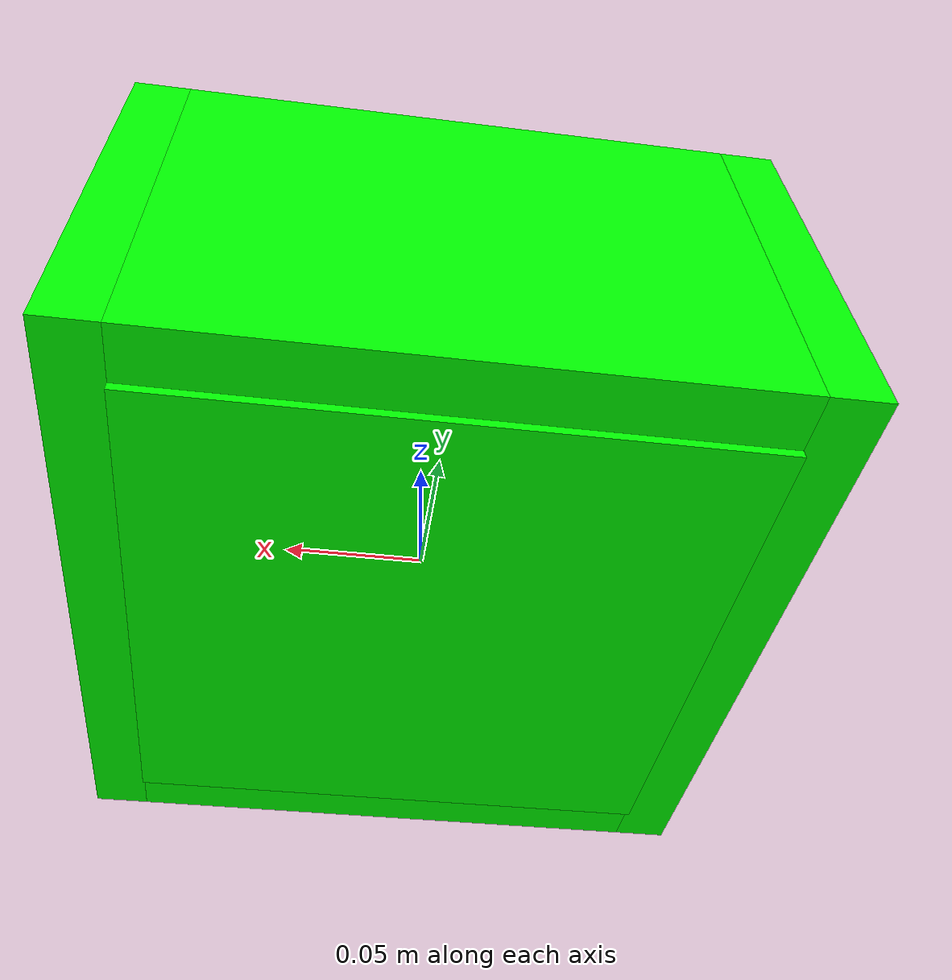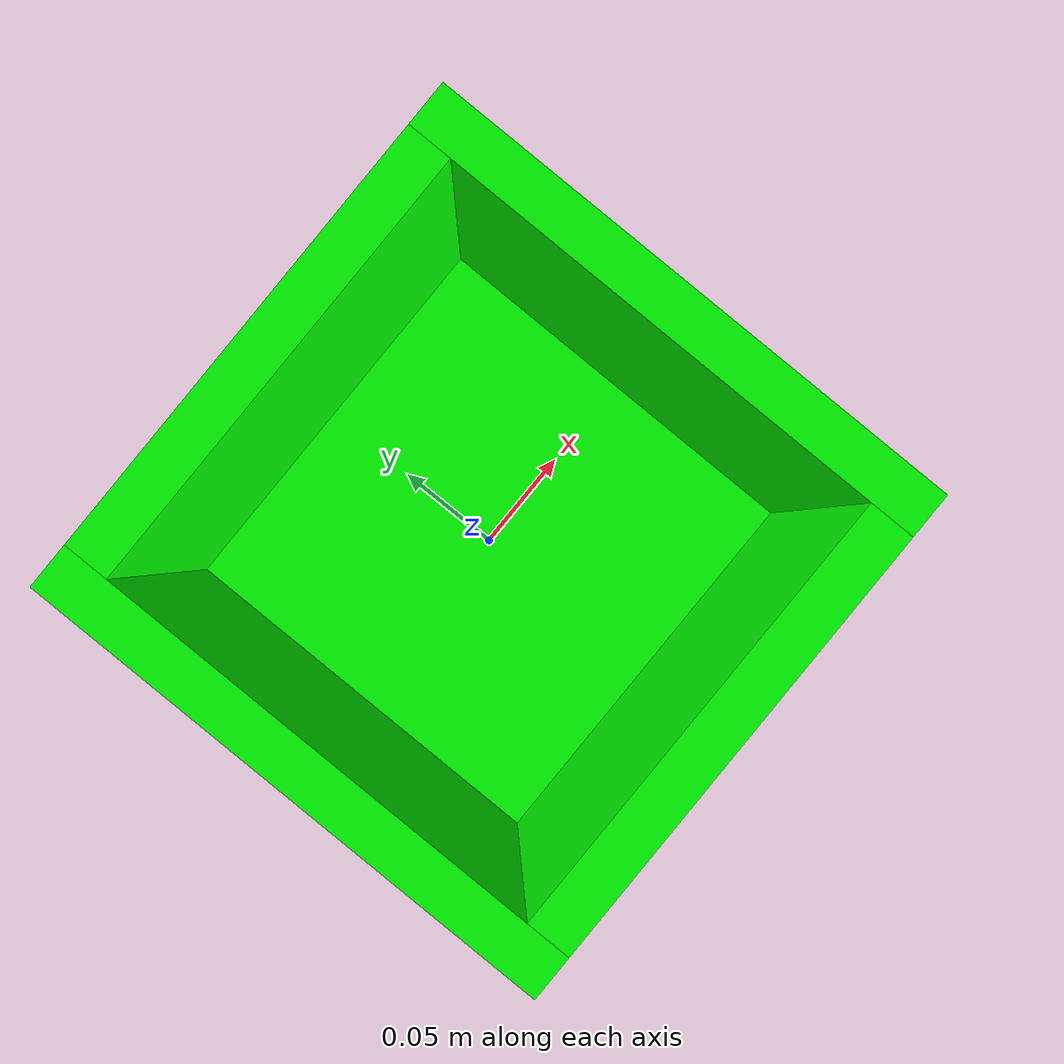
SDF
<?xml version='1.0'?>
<sdf version='1.7'>
  <model name='box_green'>
    <link name='link_0'>
      <inertial>
        <mass>0.94</mass>
        <inertia>
          <ixx>0.00316467</ixx>
          <ixy>0</ixy>
          <ixz>0</ixz>
          <iyy>0.00316467</iyy>
          <iyz>0</iyz>
          <izz>0.00626667</izz>
        </inertia>
        <pose>0 0 0 0 -0 0</pose>
      </inertial>
      <pose>0 0 -0.03 0 -0 0</pose>
      <gravity>1</gravity>
      <self_collide>0</self_collide>
      <kinematic>0</kinematic>
      <enable_wind>0</enable_wind>
      <visual name='visual'>
        <pose>0 0 0 0 -0 0</pose>
        <geometry>
          <box>
            <size>0.2 0.2 0.02</size>
          </box>
        </geometry>
        <material>
          <lighting>1</lighting>
          <script>
            <uri>file://media/materials/scripts/gazebo.material</uri>
            <name>Gazebo/Grey</name>
          </script>
          <shader type='pixel'>
            <normal_map>__default__</normal_map>
          </shader>
          <ambient>0 1 0 1</ambient>
          <diffuse>0.7 0.7 0.7 1</diffuse>
          <specular>0.01 0.01 0.01 1</specular>
          <emissive>0 0 0 1</emissive>
        </material>
        <transparency>0</transparency>
        <cast_shadows>1</cast_shadows>
      </visual>
      <collision name='collision'>
        <laser_retro>0</laser_retro>
        <max_contacts>10</max_contacts>
        <pose>0 0 0 0 -0 0</pose>
        <geometry>
          <box>
            <size>0.2 0.2 0.02</size>
          </box>
        </geometry>
        <surface>
          <friction>
            <ode>
              <mu>1</mu>
              <mu2>1</mu2>
              <fdir1>0 0 0</fdir1>
              <slip1>0</slip1>
              <slip2>0</slip2>
            </ode>
            <torsional>
              <coefficient>1</coefficient>
              <patch_radius>0</patch_radius>
              <surface_radius>0</surface_radius>
              <use_patch_radius>1</use_patch_radius>
              <ode>
                <slip>0</slip>
              </ode>
            </torsional>
          </friction>
          <bounce>
            <restitution_coefficient>0</restitution_coefficient>
            <threshold>1e+06</threshold>
          </bounce>
          <contact>
            <collide_without_contact>0</collide_without_contact>
            <collide_without_contact_bitmask>1</collide_without_contact_bitmask>
            <collide_bitmask>1</collide_bitmask>
            <ode>
              <soft_cfm>0</soft_cfm>
              <soft_erp>0.2</soft_erp>
              <kp>1e+13</kp>
              <kd>1</kd>
              <max_vel>0.01</max_vel>
              <min_depth>0</min_depth>
            </ode>
            <bullet>
              <split_impulse>1</split_impulse>
              <split_impulse_penetration_threshold>-0.01</split_impulse_penetration_threshold>
              <soft_cfm>0</soft_cfm>
              <soft_erp>0.2</soft_erp>
              <kp>1e+13</kp>
              <kd>1</kd>
            </bullet>
          </contact>
        </surface>
      </collision>
    </link>
    <link name='link_1'>
      <inertial>
        <mass>2.256</mass>
        <inertia>
          <ixx>0.0409088</ixx>
          <ixy>0</ixy>
          <ixz>0</ixz>
          <iyy>0.0301552</iyy>
          <iyz>0</iyz>
          <izz>0.010904</izz>
        </inertia>
        <pose>0 0 0 0 -0 0</pose>
      </inertial>
      <pose>-0.11 0 0.038 0 -0 0</pose>
      <gravity>1</gravity>
      <self_collide>0</self_collide>
      <kinematic>0</kinematic>
      <enable_wind>0</enable_wind>
      <visual name='visual'>
        <pose>0 0 0 0 -0 0</pose>
        <geometry>
          <box>
            <size>0.02 0.24 0.15</size>
          </box>
        </geometry>
        <material>
          <lighting>1</lighting>
          <script>
            <uri>file://media/materials/scripts/gazebo.material</uri>
            <name>Gazebo/Grey</name>
          </script>
          <shader type='pixel'>
            <normal_map>__default__</normal_map>
          </shader>
          <ambient>0 1 0 1</ambient>
          <diffuse>0.7 0.7 0.7 1</diffuse>
          <specular>0.01 0.01 0.01 1</specular>
          <emissive>0 0 0 1</emissive>
        </material>
        <transparency>0</transparency>
        <cast_shadows>1</cast_shadows>
      </visual>
      <collision name='collision'>
        <laser_retro>0</laser_retro>
        <max_contacts>10</max_contacts>
        <pose>0 0 0 0 -0 0</pose>
        <geometry>
          <box>
            <size>0.02 0.24 0.15</size>
          </box>
        </geometry>
        <surface>
          <friction>
            <ode>
              <mu>1</mu>
              <mu2>1</mu2>
              <fdir1>0 0 0</fdir1>
              <slip1>0</slip1>
              <slip2>0</slip2>
            </ode>
            <torsional>
              <coefficient>1</coefficient>
              <patch_radius>0</patch_radius>
              <surface_radius>0</surface_radius>
              <use_patch_radius>1</use_patch_radius>
              <ode>
                <slip>0</slip>
              </ode>
            </torsional>
          </friction>
          <bounce>
            <restitution_coefficient>0</restitution_coefficient>
            <threshold>1e+06</threshold>
          </bounce>
          <contact>
            <collide_without_contact>0</collide_without_contact>
            <collide_without_contact_bitmask>1</collide_without_contact_bitmask>
            <collide_bitmask>1</collide_bitmask>
            <ode>
              <soft_cfm>0</soft_cfm>
              <soft_erp>0.2</soft_erp>
              <kp>1e+13</kp>
              <kd>1</kd>
              <max_vel>0.01</max_vel>
              <min_depth>0</min_depth>
            </ode>
            <bullet>
              <split_impulse>1</split_impulse>
              <split_impulse_penetration_threshold>-0.01</split_impulse_penetration_threshold>
              <soft_cfm>0</soft_cfm>
              <soft_erp>0.2</soft_erp>
              <kp>1e+13</kp>
              <kd>1</kd>
            </bullet>
          </contact>
        </surface>
      </collision>
    </link>
    <link name='link_1_clone'>
      <inertial>
        <mass>2.256</mass>
        <inertia>
          <ixx>0.0409088</ixx>
          <ixy>0</ixy>
          <ixz>0</ixz>
          <iyy>0.0301552</iyy>
          <iyz>0</iyz>
          <izz>0.010904</izz>
        </inertia>
        <pose>0 0 0 0 -0 0</pose>
      </inertial>
      <pose>0.11 0 0.038 0 -0 0</pose>
      <gravity>1</gravity>
      <self_collide>0</self_collide>
      <kinematic>0</kinematic>
      <enable_wind>0</enable_wind>
      <visual name='visual'>
        <pose>0 0 0 0 -0 0</pose>
        <geometry>
          <box>
            <size>0.02 0.24 0.15</size>
          </box>
        </geometry>
        <material>
          <lighting>1</lighting>
          <script>
            <uri>file://media/materials/scripts/gazebo.material</uri>
            <name>Gazebo/Grey</name>
          </script>
          <shader type='pixel'>
            <normal_map>__default__</normal_map>
          </shader>
          <ambient>0 1 0 1</ambient>
          <diffuse>0.7 0.7 0.7 1</diffuse>
          <specular>0.01 0.01 0.01 1</specular>
          <emissive>0 0 0 1</emissive>
        </material>
        <transparency>0</transparency>
        <cast_shadows>1</cast_shadows>
      </visual>
      <collision name='collision'>
        <laser_retro>0</laser_retro>
        <max_contacts>10</max_contacts>
        <pose>0 0 0 0 -0 0</pose>
        <geometry>
          <box>
            <size>0.02 0.24 0.15</size>
          </box>
        </geometry>
        <surface>
          <friction>
            <ode>
              <mu>1</mu>
              <mu2>1</mu2>
              <fdir1>0 0 0</fdir1>
              <slip1>0</slip1>
              <slip2>0</slip2>
            </ode>
            <torsional>
              <coefficient>1</coefficient>
              <patch_radius>0</patch_radius>
              <surface_radius>0</surface_radius>
              <use_patch_radius>1</use_patch_radius>
              <ode>
                <slip>0</slip>
              </ode>
            </torsional>
          </friction>
          <bounce>
            <restitution_coefficient>0</restitution_coefficient>
            <threshold>1e+06</threshold>
          </bounce>
          <contact>
            <collide_without_contact>0</collide_without_contact>
            <collide_without_contact_bitmask>1</collide_without_contact_bitmask>
            <collide_bitmask>1</collide_bitmask>
            <ode>
              <soft_cfm>0</soft_cfm>
              <soft_erp>0.2</soft_erp>
              <kp>1e+13</kp>
              <kd>1</kd>
              <max_vel>0.01</max_vel>
              <min_depth>0</min_depth>
            </ode>
            <bullet>
              <split_impulse>1</split_impulse>
              <split_impulse_penetration_threshold>-0.01</split_impulse_penetration_threshold>
              <soft_cfm>0</soft_cfm>
              <soft_erp>0.2</soft_erp>
              <kp>1e+13</kp>
              <kd>1</kd>
            </bullet>
          </contact>
        </surface>
      </collision>
    </link>
    <link name='link_1_clone_0'>
      <inertial>
        <mass>1.88</mass>
        <inertia>
          <ixx>0.0251293</ixx>
          <ixy>0</ixy>
          <ixz>0</ixz>
          <iyy>0.0313333</iyy>
          <iyz>0</iyz>
          <izz>0.00632933</izz>
        </inertia>
        <pose>0 0 0 0 -0 0</pose>
      </inertial>
      <pose>0 0.11 0.038 0 -0 0</pose>
      <gravity>1</gravity>
      <self_collide>0</self_collide>
      <kinematic>0</kinematic>
      <enable_wind>0</enable_wind>
      <visual name='visual'>
        <pose>0 0 0 0 -0 0</pose>
        <geometry>
          <box>
            <size>0.2 0.02 0.15</size>
          </box>
        </geometry>
        <material>
          <lighting>1</lighting>
          <script>
            <uri>file://media/materials/scripts/gazebo.material</uri>
            <name>Gazebo/Grey</name>
          </script>
          <shader type='pixel'>
            <normal_map>__default__</normal_map>
          </shader>
          <ambient>0 1 0 1</ambient>
          <diffuse>0.7 0.7 0.7 1</diffuse>
          <specular>0.01 0.01 0.01 1</specular>
          <emissive>0 0 0 1</emissive>
        </material>
        <transparency>0</transparency>
        <cast_shadows>1</cast_shadows>
      </visual>
      <collision name='collision'>
        <laser_retro>0</laser_retro>
        <max_contacts>10</max_contacts>
        <pose>0 0 0 0 -0 0</pose>
        <geometry>
          <box>
            <size>0.2 0.02 0.15</size>
          </box>
        </geometry>
        <surface>
          <friction>
            <ode>
              <mu>1</mu>
              <mu2>1</mu2>
              <fdir1>0 0 0</fdir1>
              <slip1>0</slip1>
              <slip2>0</slip2>
            </ode>
            <torsional>
              <coefficient>1</coefficient>
              <patch_radius>0</patch_radius>
              <surface_radius>0</surface_radius>
              <use_patch_radius>1</use_patch_radius>
              <ode>
                <slip>0</slip>
              </ode>
            </torsional>
          </friction>
          <bounce>
            <restitution_coefficient>0</restitution_coefficient>
            <threshold>1e+06</threshold>
          </bounce>
          <contact>
            <collide_without_contact>0</collide_without_contact>
            <collide_without_contact_bitmask>1</collide_without_contact_bitmask>
            <collide_bitmask>1</collide_bitmask>
            <ode>
              <soft_cfm>0</soft_cfm>
              <soft_erp>0.2</soft_erp>
              <kp>1e+13</kp>
              <kd>1</kd>
              <max_vel>0.01</max_vel>
              <min_depth>0</min_depth>
            </ode>
            <bullet>
              <split_impulse>1</split_impulse>
              <split_impulse_penetration_threshold>-0.01</split_impulse_penetration_threshold>
              <soft_cfm>0</soft_cfm>
              <soft_erp>0.2</soft_erp>
              <kp>1e+13</kp>
              <kd>1</kd>
            </bullet>
          </contact>
        </surface>
      </collision>
    </link>
    <link name='link_1_clone_0_clone'>
      <inertial>
        <mass>1.88</mass>
        <inertia>
          <ixx>0.0251293</ixx>
          <ixy>0</ixy>
          <ixz>0</ixz>
          <iyy>0.0313333</iyy>
          <iyz>0</iyz>
          <izz>0.00632933</izz>
        </inertia>
        <pose>0 0 0 0 -0 0</pose>
      </inertial>
      <pose>0 -0.11 0.038 0 -0 0</pose>
      <gravity>1</gravity>
      <self_collide>0</self_collide>
      <kinematic>0</kinematic>
      <enable_wind>0</enable_wind>
      <visual name='visual'>
        <pose>0 0 0 0 -0 0</pose>
        <geometry>
          <box>
            <size>0.2 0.02 0.15</size>
          </box>
        </geometry>
        <material>
          <lighting>1</lighting>
          <script>
            <uri>file://media/materials/scripts/gazebo.material</uri>
            <name>Gazebo/Grey</name>
          </script>
          <shader type='pixel'>
            <normal_map>__default__</normal_map>
          </shader>
          <ambient>0 1 0 1</ambient>
          <diffuse>0.7 0.7 0.7 1</diffuse>
          <specular>0.01 0.01 0.01 1</specular>
          <emissive>0 0 0 1</emissive>
        </material>
        <transparency>0</transparency>
        <cast_shadows>1</cast_shadows>
      </visual>
      <collision name='collision'>
        <laser_retro>0</laser_retro>
        <max_contacts>10</max_contacts>
        <pose>0 0 0 0 -0 0</pose>
        <geometry>
          <box>
            <size>0.2 0.02 0.15</size>
          </box>
        </geometry>
        <surface>
          <friction>
            <ode>
              <mu>1</mu>
              <mu2>1</mu2>
              <fdir1>0 0 0</fdir1>
              <slip1>0</slip1>
              <slip2>0</slip2>
            </ode>
            <torsional>
              <coefficient>1</coefficient>
              <patch_radius>0</patch_radius>
              <surface_radius>0</surface_radius>
              <use_patch_radius>1</use_patch_radius>
              <ode>
                <slip>0</slip>
              </ode>
            </torsional>
          </friction>
          <bounce>
            <restitution_coefficient>0</restitution_coefficient>
            <threshold>1e+06</threshold>
          </bounce>
          <contact>
            <collide_without_contact>0</collide_without_contact>
            <collide_without_contact_bitmask>1</collide_without_contact_bitmask>
            <collide_bitmask>1</collide_bitmask>
            <ode>
              <soft_cfm>0</soft_cfm>
              <soft_erp>0.2</soft_erp>
              <kp>1e+13</kp>
              <kd>1</kd>
              <max_vel>0.01</max_vel>
              <min_depth>0</min_depth>
            </ode>
            <bullet>
              <split_impulse>1</split_impulse>
              <split_impulse_penetration_threshold>-0.01</split_impulse_penetration_threshold>
              <soft_cfm>0</soft_cfm>
              <soft_erp>0.2</soft_erp>
              <kp>1e+13</kp>
              <kd>1</kd>
            </bullet>
          </contact>
        </surface>
      </collision>
    </link>
    <static>0</static>
    <allow_auto_disable>1</allow_auto_disable>
  </model>
</sdf>
